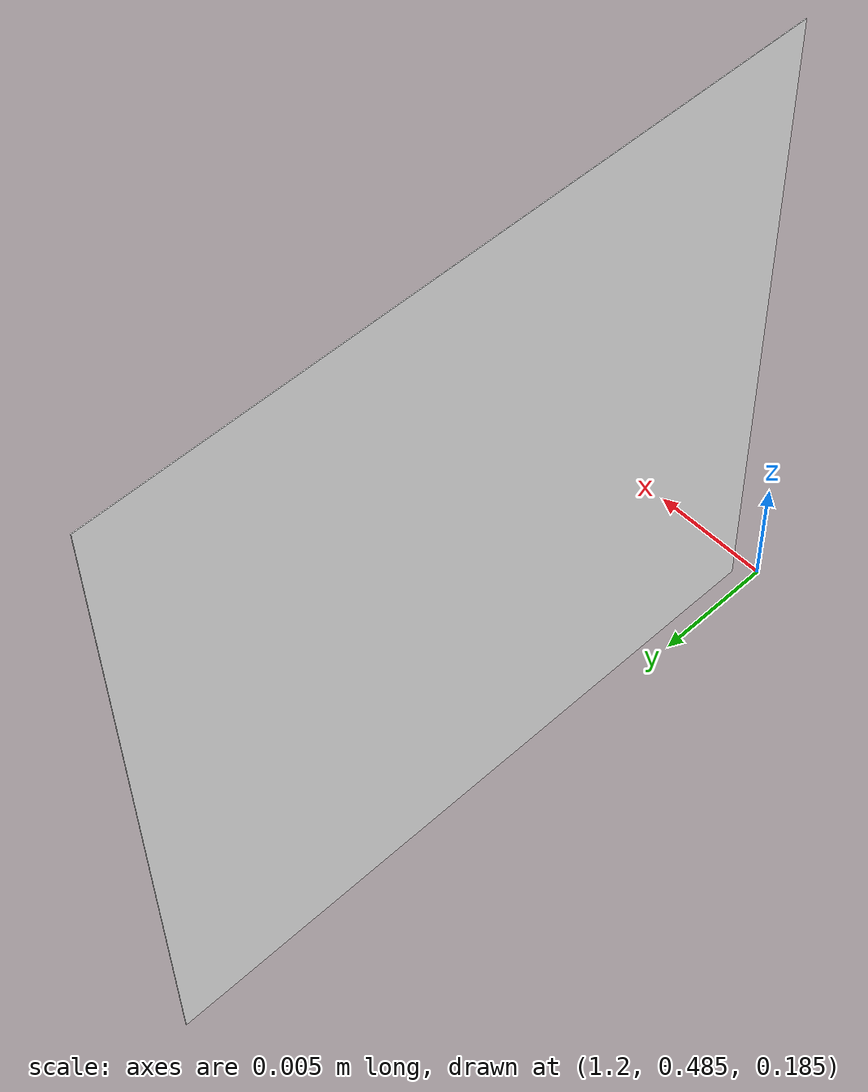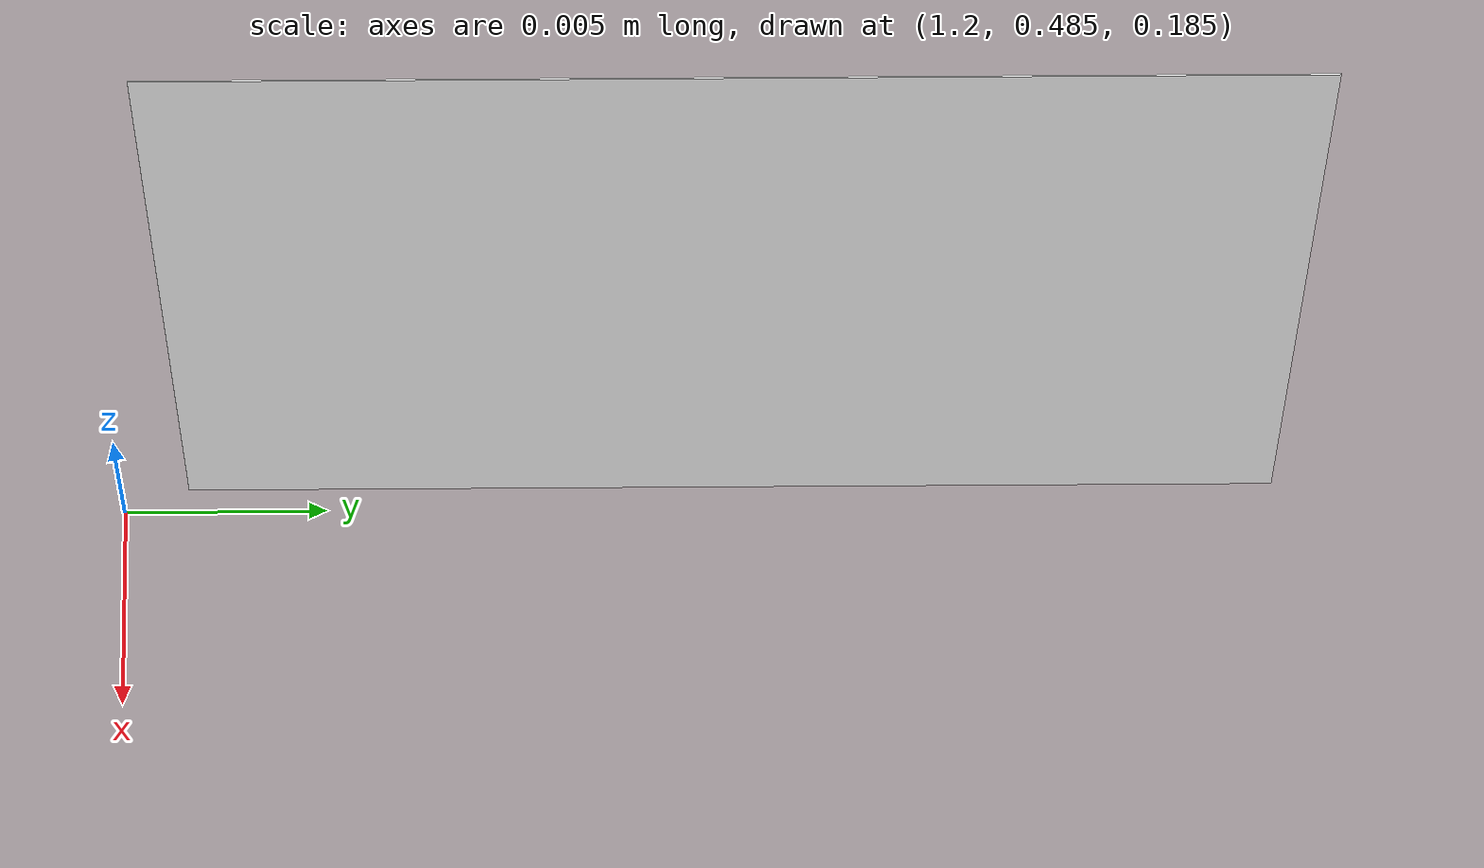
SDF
<sdf version="1.8">
 <world name="aruco_arena">
  <model name="aruco_upright_2">
   <static>true</static>
   <pose>1.2 0.5 0.20 0 -1.57079632679 0</pose>
   <link name="tag">
    <visual name="white_margin">
     <geometry><plane><normal>0 0 1</normal><size>0.0266666667 0.0266666667</size></plane></geometry>
     <cast_shadows>false</cast_shadows>
     <material><ambient>1 1 1 1</ambient><diffuse>1 1 1 1</diffuse><specular>0 0 0 1</specular></material>
    </visual>
    <visual name="black_0_0">
     <pose>-0.0083333333 0.0083333333 1e-05 0 0 0</pose>
     <geometry><plane><normal>0 0 1</normal><size>0.0033333333 0.0033333333</size></plane></geometry>
     <cast_shadows>false</cast_shadows>
     <material><ambient>0 0 0 1</ambient><diffuse>0 0 0 1</diffuse><specular>0 0 0 1</specular></material>
    </visual>
    <visual name="black_0_1">
     <pose>-0.0050000000 0.0083333333 1e-05 0 0 0</pose>
     <geometry><plane><normal>0 0 1</normal><size>0.0033333333 0.0033333333</size></plane></geometry>
     <cast_shadows>false</cast_shadows>
     <material><ambient>0 0 0 1</ambient><diffuse>0 0 0 1</diffuse><specular>0 0 0 1</specular></material>
    </visual>
    <visual name="black_0_2">
     <pose>-0.0016666667 0.0083333333 1e-05 0 0 0</pose>
     <geometry><plane><normal>0 0 1</normal><size>0.0033333333 0.0033333333</size></plane></geometry>
     <cast_shadows>false</cast_shadows>
     <material><ambient>0 0 0 1</ambient><diffuse>0 0 0 1</diffuse><specular>0 0 0 1</specular></material>
    </visual>
    <visual name="black_0_3">
     <pose>0.0016666667 0.0083333333 1e-05 0 0 0</pose>
     <geometry><plane><normal>0 0 1</normal><size>0.0033333333 0.0033333333</size></plane></geometry>
     <cast_shadows>false</cast_shadows>
     <material><ambient>0 0 0 1</ambient><diffuse>0 0 0 1</diffuse><specular>0 0 0 1</specular></material>
    </visual>
    <visual name="black_0_4">
     <pose>0.0050000000 0.0083333333 1e-05 0 0 0</pose>
     <geometry><plane><normal>0 0 1</normal><size>0.0033333333 0.0033333333</size></plane></geometry>
     <cast_shadows>false</cast_shadows>
     <material><ambient>0 0 0 1</ambient><diffuse>0 0 0 1</diffuse><specular>0 0 0 1</specular></material>
    </visual>
    <visual name="black_0_5">
     <pose>0.0083333333 0.0083333333 1e-05 0 0 0</pose>
     <geometry><plane><normal>0 0 1</normal><size>0.0033333333 0.0033333333</size></plane></geometry>
     <cast_shadows>false</cast_shadows>
     <material><ambient>0 0 0 1</ambient><diffuse>0 0 0 1</diffuse><specular>0 0 0 1</specular></material>
    </visual>
    <visual name="black_1_0">
     <pose>-0.0083333333 0.0050000000 1e-05 0 0 0</pose>
     <geometry><plane><normal>0 0 1</normal><size>0.0033333333 0.0033333333</size></plane></geometry>
     <cast_shadows>false</cast_shadows>
     <material><ambient>0 0 0 1</ambient><diffuse>0 0 0 1</diffuse><specular>0 0 0 1</specular></material>
    </visual>
    <visual name="black_1_1">
     <pose>-0.0050000000 0.0050000000 1e-05 0 0 0</pose>
     <geometry><plane><normal>0 0 1</normal><size>0.0033333333 0.0033333333</size></plane></geometry>
     <cast_shadows>false</cast_shadows>
     <material><ambient>0 0 0 1</ambient><diffuse>0 0 0 1</diffuse><specular>0 0 0 1</specular></material>
    </visual>
    <visual name="black_1_2">
     <pose>-0.0016666667 0.0050000000 1e-05 0 0 0</pose>
     <geometry><plane><normal>0 0 1</normal><size>0.0033333333 0.0033333333</size></plane></geometry>
     <cast_shadows>false</cast_shadows>
     <material><ambient>0 0 0 1</ambient><diffuse>0 0 0 1</diffuse><specular>0 0 0 1</specular></material>
    </visual>
    <visual name="black_1_5">
     <pose>0.0083333333 0.0050000000 1e-05 0 0 0</pose>
     <geometry><plane><normal>0 0 1</normal><size>0.0033333333 0.0033333333</size></plane></geometry>
     <cast_shadows>false</cast_shadows>
     <material><ambient>0 0 0 1</ambient><diffuse>0 0 0 1</diffuse><specular>0 0 0 1</specular></material>
    </visual>
    <visual name="black_2_0">
     <pose>-0.0083333333 0.0016666667 1e-05 0 0 0</pose>
     <geometry><plane><normal>0 0 1</normal><size>0.0033333333 0.0033333333</size></plane></geometry>
     <cast_shadows>false</cast_shadows>
     <material><ambient>0 0 0 1</ambient><diffuse>0 0 0 1</diffuse><specular>0 0 0 1</specular></material>
    </visual>
    <visual name="black_2_1">
     <pose>-0.0050000000 0.0016666667 1e-05 0 0 0</pose>
     <geometry><plane><normal>0 0 1</normal><size>0.0033333333 0.0033333333</size></plane></geometry>
     <cast_shadows>false</cast_shadows>
     <material><ambient>0 0 0 1</ambient><diffuse>0 0 0 1</diffuse><specular>0 0 0 1</specular></material>
    </visual>
    <visual name="black_2_2">
     <pose>-0.0016666667 0.0016666667 1e-05 0 0 0</pose>
     <geometry><plane><normal>0 0 1</normal><size>0.0033333333 0.0033333333</size></plane></geometry>
     <cast_shadows>false</cast_shadows>
     <material><ambient>0 0 0 1</ambient><diffuse>0 0 0 1</diffuse><specular>0 0 0 1</specular></material>
    </visual>
    <visual name="black_2_5">
     <pose>0.0083333333 0.0016666667 1e-05 0 0 0</pose>
     <geometry><plane><normal>0 0 1</normal><size>0.0033333333 0.0033333333</size></plane></geometry>
     <cast_shadows>false</cast_shadows>
     <material><ambient>0 0 0 1</ambient><diffuse>0 0 0 1</diffuse><specular>0 0 0 1</specular></material>
    </visual>
    <visual name="black_3_0">
     <pose>-0.0083333333 -0.0016666667 1e-05 0 0 0</pose>
     <geometry><plane><normal>0 0 1</normal><size>0.0033333333 0.0033333333</size></plane></geometry>
     <cast_shadows>false</cast_shadows>
     <material><ambient>0 0 0 1</ambient><diffuse>0 0 0 1</diffuse><specular>0 0 0 1</specular></material>
    </visual>
    <visual name="black_3_1">
     <pose>-0.0050000000 -0.0016666667 1e-05 0 0 0</pose>
     <geometry><plane><normal>0 0 1</normal><size>0.0033333333 0.0033333333</size></plane></geometry>
     <cast_shadows>false</cast_shadows>
     <material><ambient>0 0 0 1</ambient><diffuse>0 0 0 1</diffuse><specular>0 0 0 1</specular></material>
    </visual>
    <visual name="black_3_2">
     <pose>-0.0016666667 -0.0016666667 1e-05 0 0 0</pose>
     <geometry><plane><normal>0 0 1</normal><size>0.0033333333 0.0033333333</size></plane></geometry>
     <cast_shadows>false</cast_shadows>
     <material><ambient>0 0 0 1</ambient><diffuse>0 0 0 1</diffuse><specular>0 0 0 1</specular></material>
    </visual>
    <visual name="black_3_4">
     <pose>0.0050000000 -0.0016666667 1e-05 0 0 0</pose>
     <geometry><plane><normal>0 0 1</normal><size>0.0033333333 0.0033333333</size></plane></geometry>
     <cast_shadows>false</cast_shadows>
     <material><ambient>0 0 0 1</ambient><diffuse>0 0 0 1</diffuse><specular>0 0 0 1</specular></material>
    </visual>
    <visual name="black_3_5">
     <pose>0.0083333333 -0.0016666667 1e-05 0 0 0</pose>
     <geometry><plane><normal>0 0 1</normal><size>0.0033333333 0.0033333333</size></plane></geometry>
     <cast_shadows>false</cast_shadows>
     <material><ambient>0 0 0 1</ambient><diffuse>0 0 0 1</diffuse><specular>0 0 0 1</specular></material>
    </visual>
    <visual name="black_4_0">
     <pose>-0.0083333333 -0.0050000000 1e-05 0 0 0</pose>
     <geometry><plane><normal>0 0 1</normal><size>0.0033333333 0.0033333333</size></plane></geometry>
     <cast_shadows>false</cast_shadows>
     <material><ambient>0 0 0 1</ambient><diffuse>0 0 0 1</diffuse><specular>0 0 0 1</specular></material>
    </visual>
    <visual name="black_4_3">
     <pose>0.0016666667 -0.0050000000 1e-05 0 0 0</pose>
     <geometry><plane><normal>0 0 1</normal><size>0.0033333333 0.0033333333</size></plane></geometry>
     <cast_shadows>false</cast_shadows>
     <material><ambient>0 0 0 1</ambient><diffuse>0 0 0 1</diffuse><specular>0 0 0 1</specular></material>
    </visual>
    <visual name="black_4_5">
     <pose>0.0083333333 -0.0050000000 1e-05 0 0 0</pose>
     <geometry><plane><normal>0 0 1</normal><size>0.0033333333 0.0033333333</size></plane></geometry>
     <cast_shadows>false</cast_shadows>
     <material><ambient>0 0 0 1</ambient><diffuse>0 0 0 1</diffuse><specular>0 0 0 1</specular></material>
    </visual>
    <visual name="black_5_0">
     <pose>-0.0083333333 -0.0083333333 1e-05 0 0 0</pose>
     <geometry><plane><normal>0 0 1</normal><size>0.0033333333 0.0033333333</size></plane></geometry>
     <cast_shadows>false</cast_shadows>
     <material><ambient>0 0 0 1</ambient><diffuse>0 0 0 1</diffuse><specular>0 0 0 1</specular></material>
    </visual>
    <visual name="black_5_1">
     <pose>-0.0050000000 -0.0083333333 1e-05 0 0 0</pose>
     <geometry><plane><normal>0 0 1</normal><size>0.0033333333 0.0033333333</size></plane></geometry>
     <cast_shadows>false</cast_shadows>
     <material><ambient>0 0 0 1</ambient><diffuse>0 0 0 1</diffuse><specular>0 0 0 1</specular></material>
    </visual>
    <visual name="black_5_2">
     <pose>-0.0016666667 -0.0083333333 1e-05 0 0 0</pose>
     <geometry><plane><normal>0 0 1</normal><size>0.0033333333 0.0033333333</size></plane></geometry>
     <cast_shadows>false</cast_shadows>
     <material><ambient>0 0 0 1</ambient><diffuse>0 0 0 1</diffuse><specular>0 0 0 1</specular></material>
    </visual>
    <visual name="black_5_3">
     <pose>0.0016666667 -0.0083333333 1e-05 0 0 0</pose>
     <geometry><plane><normal>0 0 1</normal><size>0.0033333333 0.0033333333</size></plane></geometry>
     <cast_shadows>false</cast_shadows>
     <material><ambient>0 0 0 1</ambient><diffuse>0 0 0 1</diffuse><specular>0 0 0 1</specular></material>
    </visual>
    <visual name="black_5_4">
     <pose>0.0050000000 -0.0083333333 1e-05 0 0 0</pose>
     <geometry><plane><normal>0 0 1</normal><size>0.0033333333 0.0033333333</size></plane></geometry>
     <cast_shadows>false</cast_shadows>
     <material><ambient>0 0 0 1</ambient><diffuse>0 0 0 1</diffuse><specular>0 0 0 1</specular></material>
    </visual>
    <visual name="black_5_5">
     <pose>0.0083333333 -0.0083333333 1e-05 0 0 0</pose>
     <geometry><plane><normal>0 0 1</normal><size>0.0033333333 0.0033333333</size></plane></geometry>
     <cast_shadows>false</cast_shadows>
     <material><ambient>0 0 0 1</ambient><diffuse>0 0 0 1</diffuse><specular>0 0 0 1</specular></material>
    </visual>
   </link>
  </model>
  <model name="ground_plane">
   <static>true</static>
   <link name="ground">
    <collision name="collision">
     <geometry><plane><normal>0 0 1</normal><size>100 100</size></plane></geometry>
    </collision>
    <visual name="visual">
     <geometry><plane><normal>0 0 1</normal><size>100 100</size></plane></geometry>
     <material><ambient>0.7 0.7 0.7 1</ambient><diffuse>0.7 0.7 0.7 1</diffuse></material>
    </visual>
   </link>
  </model>
 </world>
</sdf>
